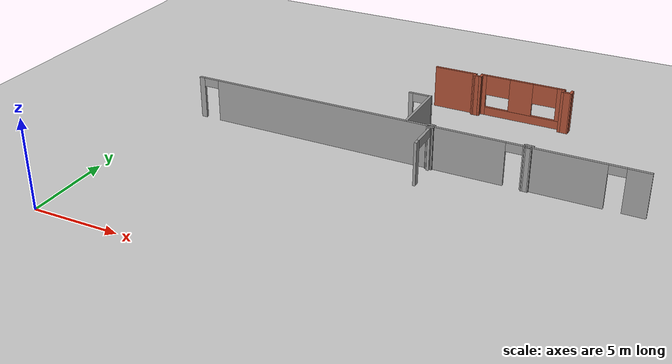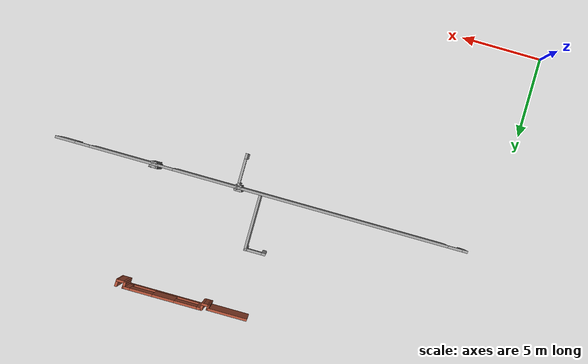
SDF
<sdf version="1.6">
 <world name="default">
  <model name="ground_plane">
   <static>1</static>
   <link name="link">
    <collision name="collision">
     <geometry><plane><normal>0 0 1</normal><size>100 100</size></plane></geometry>
     <surface><friction><ode><mu>100</mu><mu2>50</mu2></ode></friction></surface>
    </collision>
    <visual name="visual">
     <cast_shadows>0</cast_shadows>
     <geometry><plane><normal>0 0 1</normal><size>100 100</size></plane></geometry>
     <material>
      <script><uri>file://media/materials/scripts/gazebo.material</uri><name>Gazebo/Grey</name></script>
     </material>
    </visual>
   </link>
  </model>
  <model name="CVSSP">
   <pose>23.8714 24.094 0 0 -0 0</pose>
   <link name="Wall_517">
    <pose>-9.53376 -11.3942 0 0 -0 3.14159</pose>
    <visual name="Wall_517_Visual_0">
     <pose>-12.2631 0 1.25 0 -0 0</pose>
     <geometry><box><size>1.22376 0.15 2.5</size></box></geometry>
     <material>
      <script><uri>file://media/materials/scripts/gazebo.material</uri><name>Gazebo/Grey</name></script>
      <ambient>0.588235 0.588235 0.588235 1</ambient>
     </material>
    </visual>
    <collision name="Wall_517_Collision_0">
     <geometry><box><size>1.22376 0.15 2.5</size></box></geometry>
     <pose>-12.2631 0 1.25 0 -0 0</pose>
    </collision>
    <visual name="Wall_517_Visual_1">
     <pose>-8.60772 0 1.25 0 -0 0</pose>
     <geometry><box><size>4.28704 0.15 2.5</size></box></geometry>
     <material>
      <script><uri>file://media/materials/scripts/gazebo.material</uri><name>Gazebo/Grey</name></script>
      <ambient>0.588235 0.588235 0.588235 1</ambient>
     </material>
    </visual>
    <collision name="Wall_517_Collision_1">
     <geometry><box><size>4.28704 0.15 2.5</size></box></geometry>
     <pose>-8.60772 0 1.25 0 -0 0</pose>
    </collision>
    <visual name="Wall_517_Visual_2">
     <pose>3.03485 0 1.25 0 -0 0</pose>
     <geometry><box><size>17.1981 0.15 2.5</size></box></geometry>
     <material>
      <script><uri>file://media/materials/scripts/gazebo.material</uri><name>Gazebo/Grey</name></script>
      <ambient>0.588235 0.588235 0.588235 1</ambient>
     </material>
    </visual>
    <collision name="Wall_517_Collision_2">
     <geometry><box><size>17.1981 0.15 2.5</size></box></geometry>
     <pose>3.03485 0 1.25 0 -0 0</pose>
    </collision>
    <visual name="Wall_517_Visual_3">
     <pose>12.7044 0 1.25 0 -0 0</pose>
     <geometry><box><size>0.341103 0.15 2.5</size></box></geometry>
     <material>
      <script><uri>file://media/materials/scripts/gazebo.material</uri><name>Gazebo/Grey</name></script>
      <ambient>0.588235 0.588235 0.588235 1</ambient>
     </material>
    </visual>
    <collision name="Wall_517_Collision_3">
     <geometry><box><size>0.341103 0.15 2.5</size></box></geometry>
     <pose>12.7044 0 1.25 0 -0 0</pose>
    </collision>
    <visual name="Wall_517_Visual_4">
     <pose>-11.2012 0 2.25 0 -0 0</pose>
     <geometry><box><size>0.9 0.15 0.5</size></box></geometry>
     <material>
      <script><uri>file://media/materials/scripts/gazebo.material</uri><name>Gazebo/Grey</name></script>
      <ambient>0.588235 0.588235 0.588235 1</ambient>
     </material>
    </visual>
    <collision name="Wall_517_Collision_4">
     <geometry><box><size>0.9 0.15 0.5</size></box></geometry>
     <pose>-11.2012 0 2.25 0 -0 0</pose>
    </collision>
    <visual name="Wall_517_Visual_5">
     <pose>-6.0142 0 2.25 0 -0 0</pose>
     <geometry><box><size>0.9 0.15 0.5</size></box></geometry>
     <material>
      <script><uri>file://media/materials/scripts/gazebo.material</uri><name>Gazebo/Grey</name></script>
      <ambient>0.588235 0.588235 0.588235 1</ambient>
     </material>
    </visual>
    <collision name="Wall_517_Collision_5">
     <geometry><box><size>0.9 0.15 0.5</size></box></geometry>
     <pose>-6.0142 0 2.25 0 -0 0</pose>
    </collision>
    <visual name="Wall_517_Visual_6">
     <pose>12.0839 0 2.25 0 -0 0</pose>
     <geometry><box><size>0.9 0.15 0.5</size></box></geometry>
     <material>
      <script><uri>file://media/materials/scripts/gazebo.material</uri><name>Gazebo/Grey</name></script>
      <ambient>0.588235 0.588235 0.588235 1</ambient>
     </material>
    </visual>
    <collision name="Wall_517_Collision_6">
     <geometry><box><size>0.9 0.15 0.5</size></box></geometry>
     <pose>12.0839 0 2.25 0 -0 0</pose>
    </collision>
   </link>
   <link name="Wall_528">
    <pose>-10.0632 -7.95787 0 0 -0 0</pose>
    <visual name="Wall_528_Visual_0">
     <pose>-0.550159 0 1.25 0 -0 0</pose>
     <geometry><box><size>0.253402 0.15 2.5</size></box></geometry>
     <material>
      <script><uri>file://media/materials/scripts/gazebo.material</uri><name>Gazebo/Grey</name></script>
      <ambient>0.588235 0.588235 0.588235 1</ambient>
     </material>
    </visual>
    <collision name="Wall_528_Collision_0">
     <geometry><box><size>0.253402 0.15 2.5</size></box></geometry>
     <pose>-0.550159 0 1.25 0 -0 0</pose>
    </collision>
    <visual name="Wall_528_Visual_1">
     <pose>0.576701 0 1.25 0 -0 0</pose>
     <geometry><box><size>0.200318 0.15 2.5</size></box></geometry>
     <material>
      <script><uri>file://media/materials/scripts/gazebo.material</uri><name>Gazebo/Grey</name></script>
      <ambient>0.588235 0.588235 0.588235 1</ambient>
     </material>
    </visual>
    <collision name="Wall_528_Collision_1">
     <geometry><box><size>0.200318 0.15 2.5</size></box></geometry>
     <pose>0.576701 0 1.25 0 -0 0</pose>
    </collision>
    <visual name="Wall_528_Visual_2">
     <pose>0.026542 0 2.25 0 -0 0</pose>
     <geometry><box><size>0.9 0.15 0.5</size></box></geometry>
     <material>
      <script><uri>file://media/materials/scripts/gazebo.material</uri><name>Gazebo/Grey</name></script>
      <ambient>0.588235 0.588235 0.588235 1</ambient>
     </material>
    </visual>
    <collision name="Wall_528_Collision_2">
     <geometry><box><size>0.9 0.15 0.5</size></box></geometry>
     <pose>0.026542 0 2.25 0 -0 0</pose>
    </collision>
   </link>
   <link name="Wall_529">
    <collision name="Wall_529_Collision">
     <geometry><box><size>3.5 0.15 2.5</size></box></geometry>
     <pose>0 0 1.25 0 -0 0</pose>
    </collision>
    <visual name="Wall_529_Visual">
     <pose>0 0 1.25 0 -0 0</pose>
     <geometry><box><size>3.5 0.15 2.5</size></box></geometry>
     <material>
      <script><uri>file://media/materials/scripts/gazebo.material</uri><name>Gazebo/Grey</name></script>
      <ambient>0.588235 0.588235 0.588235 1</ambient>
     </material>
    </visual>
    <pose>-9.4614 -9.62137 0 0 0 -1.5708</pose>
   </link>
   <link name="Wall_537">
    <pose>-8.036 -12.4082 0 0 0 -1.5708</pose>
    <visual name="Wall_537_Visual_0">
     <pose>-0.92041 0 1.25 0 -0 0</pose>
     <geometry><box><size>0.409181 0.15 2.5</size></box></geometry>
     <material>
      <script><uri>file://media/materials/scripts/gazebo.material</uri><name>Gazebo/Grey</name></script>
      <ambient>1 1 1 1</ambient>
     </material>
    </visual>
    <collision name="Wall_537_Collision_0">
     <geometry><box><size>0.409181 0.15 2.5</size></box></geometry>
     <pose>-0.92041 0 1.25 0 -0 0</pose>
    </collision>
    <visual name="Wall_537_Visual_1">
     <pose>0.95091 0 1.25 0 -0 0</pose>
     <geometry><box><size>0.34818 0.15 2.5</size></box></geometry>
     <material>
      <script><uri>file://media/materials/scripts/gazebo.material</uri><name>Gazebo/Grey</name></script>
      <ambient>1 1 1 1</ambient>
     </material>
    </visual>
    <collision name="Wall_537_Collision_1">
     <geometry><box><size>0.34818 0.15 2.5</size></box></geometry>
     <pose>0.95091 0 1.25 0 -0 0</pose>
    </collision>
    <visual name="Wall_537_Visual_2">
     <pose>0.0305 0 2.25 0 -0 0</pose>
     <geometry><box><size>1.49264 0.15 0.5</size></box></geometry>
     <material>
      <script><uri>file://media/materials/scripts/gazebo.material</uri><name>Gazebo/Grey</name></script>
      <ambient>1 1 1 1</ambient>
     </material>
    </visual>
    <collision name="Wall_537_Collision_2">
     <geometry><box><size>1.49264 0.15 0.5</size></box></geometry>
     <pose>0.0305 0 2.25 0 -0 0</pose>
    </collision>
   </link>
   <link name="Wall_800">
    <collision name="Wall_800_Collision">
     <geometry><box><size>2.52089 0.15 2.5</size></box></geometry>
     <pose>0 0 1.25 0 -0 0</pose>
    </collision>
    <visual name="Wall_800_Visual">
     <pose>0 0 1.25 0 -0 0</pose>
     <geometry><box><size>2.52089 0.15 2.5</size></box></geometry>
     <material>
      <script><uri>file://media/materials/scripts/gazebo.material</uri><name>Gazebo/Bricks</name></script>
      <ambient>1 1 1 1</ambient>
     </material>
    </visual>
    <pose>-9.45754 -3.87382 0 0 -0 0</pose>
   </link>
   <link name="Wall_801">
    <collision name="Wall_801_Collision">
     <geometry><box><size>0.358175 0.15 2.5</size></box></geometry>
     <pose>0 0 1.25 0 -0 0</pose>
    </collision>
    <visual name="Wall_801_Visual">
     <pose>0 0 1.25 0 -0 0</pose>
     <geometry><box><size>0.358175 0.15 2.5</size></box></geometry>
     <material>
      <script><uri>file://media/materials/scripts/gazebo.material</uri><name>Gazebo/Bricks</name></script>
      <ambient>1 1 1 1</ambient>
     </material>
    </visual>
    <pose>-8.27788 -3.9779 0 0 0 -1.6263</pose>
   </link>
   <link name="Wall_802">
    <collision name="Wall_802_Collision">
     <geometry><box><size>0.531655 0.15 2.5</size></box></geometry>
     <pose>0 0 1.25 0 -0 0</pose>
    </collision>
    <visual name="Wall_802_Visual">
     <pose>0 0 1.25 0 -0 0</pose>
     <geometry><box><size>0.531655 0.15 2.5</size></box></geometry>
     <material>
      <script><uri>file://media/materials/scripts/gazebo.material</uri><name>Gazebo/Bricks</name></script>
      <ambient>1 1 1 1</ambient>
     </material>
    </visual>
    <pose>-8.09283 -4.08199 0 0 -0 0</pose>
   </link>
   <link name="Wall_803">
    <collision name="Wall_803_Collision">
     <geometry><box><size>0.465304 0.15 2.5</size></box></geometry>
     <pose>0 0 1.25 0 -0 0</pose>
    </collision>
    <visual name="Wall_803_Visual">
     <pose>0 0 1.25 0 -0 0</pose>
     <geometry><box><size>0.465304 0.15 2.5</size></box></geometry>
     <material>
      <script><uri>file://media/materials/scripts/gazebo.material</uri><name>Gazebo/Bricks</name></script>
      <ambient>1 1 1 1</ambient>
     </material>
    </visual>
    <pose>-7.90201 -3.92434 0 0 -0 1.5708</pose>
   </link>
   <link name="Wall_805">
    <pose>-5.46544 -3.76669 0 0 -0 0</pose>
    <visual name="Wall_805_Visual_0">
     <pose>-2.31801 0 1.25 0 -0 0</pose>
     <geometry><box><size>0.363982 0.15 2.5</size></box></geometry>
     <material>
      <script><uri>file://media/materials/scripts/gazebo.material</uri><name>Gazebo/Bricks</name></script>
      <ambient>1 1 1 1</ambient>
     </material>
    </visual>
    <collision name="Wall_805_Collision_0">
     <geometry><box><size>0.363982 0.15 2.5</size></box></geometry>
     <pose>-2.31801 0 1.25 0 -0 0</pose>
    </collision>
    <visual name="Wall_805_Visual_1">
     <pose>0.181991 0 0.25 0 -0 0</pose>
     <geometry><box><size>4.63602 0.15 0.5</size></box></geometry>
     <material>
      <script><uri>file://media/materials/scripts/gazebo.material</uri><name>Gazebo/Bricks</name></script>
      <ambient>1 1 1 1</ambient>
     </material>
    </visual>
    <collision name="Wall_805_Collision_1">
     <geometry><box><size>4.63602 0.15 0.5</size></box></geometry>
     <pose>0.181991 0 0.25 0 -0 0</pose>
    </collision>
    <visual name="Wall_805_Visual_2">
     <pose>-0.045965 0 1.5 0 -0 0</pose>
     <geometry><box><size>1.36592 0.15 2</size></box></geometry>
     <material>
      <script><uri>file://media/materials/scripts/gazebo.material</uri><name>Gazebo/Bricks</name></script>
      <ambient>1 1 1 1</ambient>
     </material>
    </visual>
    <collision name="Wall_805_Collision_2">
     <geometry><box><size>1.36592 0.15 2</size></box></geometry>
     <pose>-0.045965 0 1.5 0 -0 0</pose>
    </collision>
    <visual name="Wall_805_Visual_3">
     <pose>2.26822 0 1.5 0 -0 0</pose>
     <geometry><box><size>0.463553 0.15 2</size></box></geometry>
     <material>
      <script><uri>file://media/materials/scripts/gazebo.material</uri><name>Gazebo/Bricks</name></script>
      <ambient>1 1 1 1</ambient>
     </material>
    </visual>
    <collision name="Wall_805_Collision_3">
     <geometry><box><size>0.463553 0.15 2</size></box></geometry>
     <pose>2.26822 0 1.5 0 -0 0</pose>
    </collision>
    <visual name="Wall_805_Visual_4">
     <pose>-1.43247 0 1.9 0 -0 0</pose>
     <geometry><box><size>1.40709 0.15 1.2</size></box></geometry>
     <material>
      <script><uri>file://media/materials/scripts/gazebo.material</uri><name>Gazebo/Bricks</name></script>
      <ambient>1 1 1 1</ambient>
     </material>
    </visual>
    <collision name="Wall_805_Collision_4">
     <geometry><box><size>1.40709 0.15 1.2</size></box></geometry>
     <pose>-1.43247 0 1.9 0 -0 0</pose>
    </collision>
    <visual name="Wall_805_Visual_5">
     <pose>1.33672 0 1.9 0 -0 0</pose>
     <geometry><box><size>1.39945 0.15 1.2</size></box></geometry>
     <material>
      <script><uri>file://media/materials/scripts/gazebo.material</uri><name>Gazebo/Bricks</name></script>
      <ambient>1 1 1 1</ambient>
     </material>
    </visual>
    <collision name="Wall_805_Collision_5">
     <geometry><box><size>1.39945 0.15 1.2</size></box></geometry>
     <pose>1.33672 0 1.9 0 -0 0</pose>
    </collision>
   </link>
   <link name="Wall_806">
    <collision name="Wall_806_Collision">
     <geometry><box><size>0.465304 0.15 2.5</size></box></geometry>
     <pose>0 0 1.25 0 -0 0</pose>
    </collision>
    <visual name="Wall_806_Visual">
     <pose>0 0 1.25 0 -0 0</pose>
     <geometry><box><size>0.465304 0.15 2.5</size></box></geometry>
     <material>
      <script><uri>file://media/materials/scripts/gazebo.material</uri><name>Gazebo/Bricks</name></script>
      <ambient>1 1 1 1</ambient>
     </material>
    </visual>
    <pose>-3.05201 -3.92434 0 0 0 -1.5708</pose>
   </link>
   <link name="Wall_807">
    <collision name="Wall_807_Collision">
     <geometry><box><size>0.60862 0.15 2.5</size></box></geometry>
     <pose>0 0 1.25 0 -0 0</pose>
    </collision>
    <visual name="Wall_807_Visual">
     <pose>0 0 1.25 0 -0 0</pose>
     <geometry><box><size>0.60862 0.15 2.5</size></box></geometry>
     <material>
      <script><uri>file://media/materials/scripts/gazebo.material</uri><name>Gazebo/Bricks</name></script>
      <ambient>1 1 1 1</ambient>
     </material>
    </visual>
    <pose>-2.82277 -4.08199 0 0 -0 0</pose>
   </link>
   <link name="Wall_808">
    <collision name="Wall_808_Collision">
     <geometry><box><size>0.453959 0.15 2.5</size></box></geometry>
     <pose>0 0 1.25 0 -0 0</pose>
    </collision>
    <visual name="Wall_808_Visual">
     <pose>0 0 1.25 0 -0 0</pose>
     <geometry><box><size>0.453959 0.15 2.5</size></box></geometry>
     <material>
      <script><uri>file://media/materials/scripts/gazebo.material</uri><name>Gazebo/Bricks</name></script>
      <ambient>1 1 1 1</ambient>
     </material>
    </visual>
    <pose>-2.58775 -3.93012 0 0 -0 1.53274</pose>
   </link>
   <link name="Wall_844">
    <collision name="Wall_844_Collision">
     <geometry><box><size>0.487216 0.15 2.5</size></box></geometry>
     <pose>0 0 1.25 0 -0 0</pose>
    </collision>
    <visual name="Wall_844_Visual">
     <pose>0 0 1.25 0 -0 0</pose>
     <geometry><box><size>0.487216 0.15 2.5</size></box></geometry>
     <material>
      <script><uri>file://media/materials/scripts/gazebo.material</uri><name>Gazebo/Grey</name></script>
      <ambient>1 1 1 1</ambient>
     </material>
    </visual>
    <pose>-8.08094 -11.2624 0 0 -0 0</pose>
   </link>
   <link name="Wall_845">
    <collision name="Wall_845_Collision">
     <geometry><box><size>0.383617 0.15 2.5</size></box></geometry>
     <pose>0 0 1.25 0 -0 0</pose>
    </collision>
    <visual name="Wall_845_Visual">
     <pose>0 0 1.25 0 -0 0</pose>
     <geometry><box><size>0.383617 0.15 2.5</size></box></geometry>
     <material>
      <script><uri>file://media/materials/scripts/gazebo.material</uri><name>Gazebo/Grey</name></script>
      <ambient>1 1 1 1</ambient>
     </material>
    </visual>
    <pose>-7.91666 -11.3791 0 0 0 -1.60782</pose>
   </link>
   <link name="Wall_846">
    <collision name="Wall_846_Collision">
     <geometry><box><size>0.409541 0.15 2.5</size></box></geometry>
     <pose>0 0 1.25 0 -0 0</pose>
    </collision>
    <visual name="Wall_846_Visual">
     <pose>0 0 1.25 0 -0 0</pose>
     <geometry><box><size>0.409541 0.15 2.5</size></box></geometry>
     <material>
      <script><uri>file://media/materials/scripts/gazebo.material</uri><name>Gazebo/Grey</name></script>
      <ambient>1 1 1 1</ambient>
     </material>
    </visual>
    <pose>-8.05068 -11.4958 0 0 -0 3.14159</pose>
   </link>
   <link name="Wall_847">
    <collision name="Wall_847_Collision">
     <geometry><box><size>0.393489 0.15 2.5</size></box></geometry>
     <pose>0 0 1.25 0 -0 0</pose>
    </collision>
    <visual name="Wall_847_Visual">
     <pose>0 0 1.25 0 -0 0</pose>
     <geometry><box><size>0.393489 0.15 2.5</size></box></geometry>
     <material>
      <script><uri>file://media/materials/scripts/gazebo.material</uri><name>Gazebo/Grey</name></script>
      <ambient>1 1 1 1</ambient>
     </material>
    </visual>
    <pose>-8.21497 -11.3791 0 0 -0 1.85885</pose>
   </link>
   <link name="Wall_849">
    <collision name="Wall_849_Collision">
     <geometry><box><size>0.513155 0.15 2.5</size></box></geometry>
     <pose>0 0 1.25 0 -0 0</pose>
    </collision>
    <visual name="Wall_849_Visual">
     <pose>0 0 1.25 0 -0 0</pose>
     <geometry><box><size>0.513155 0.15 2.5</size></box></geometry>
     <material>
      <script><uri>file://media/materials/scripts/gazebo.material</uri><name>Gazebo/Grey</name></script>
      <ambient>1 1 1 1</ambient>
     </material>
    </visual>
    <pose>-2.80222 -11.2451 0 0 -0 0</pose>
   </link>
   <link name="Wall_850">
    <collision name="Wall_850_Collision">
     <geometry><box><size>0.394561 0.15 2.5</size></box></geometry>
     <pose>0 0 1.25 0 -0 0</pose>
    </collision>
    <visual name="Wall_850_Visual">
     <pose>0 0 1.25 0 -0 0</pose>
     <geometry><box><size>0.394561 0.15 2.5</size></box></geometry>
     <material>
      <script><uri>file://media/materials/scripts/gazebo.material</uri><name>Gazebo/Grey</name></script>
      <ambient>1 1 1 1</ambient>
     </material>
    </visual>
    <pose>-2.63794 -11.3661 0 0 0 -1.71269</pose>
   </link>
   <link name="Wall_851">
    <collision name="Wall_851_Collision">
     <geometry><box><size>0.400899 0.15 2.5</size></box></geometry>
     <pose>0 0 1.25 0 -0 0</pose>
    </collision>
    <visual name="Wall_851_Visual">
     <pose>0 0 1.25 0 -0 0</pose>
     <geometry><box><size>0.400899 0.15 2.5</size></box></geometry>
     <material>
      <script><uri>file://media/materials/scripts/gazebo.material</uri><name>Gazebo/Grey</name></script>
      <ambient>1 1 1 1</ambient>
     </material>
    </visual>
    <pose>-2.78061 -11.4915 0 0 0 -3.10712</pose>
   </link>
   <link name="Wall_852">
    <collision name="Wall_852_Collision">
     <geometry><box><size>0.412548 0.15 2.5</size></box></geometry>
     <pose>0 0 1.25 0 -0 0</pose>
    </collision>
    <visual name="Wall_852_Visual">
     <pose>0 0 1.25 0 -0 0</pose>
     <geometry><box><size>0.412548 0.15 2.5</size></box></geometry>
     <material>
      <script><uri>file://media/materials/scripts/gazebo.material</uri><name>Gazebo/Grey</name></script>
      <ambient>1 1 1 1</ambient>
     </material>
    </visual>
    <pose>-2.94489 -11.3705 0 0 -0 1.87172</pose>
   </link>
   <static>1</static>
  </model>
 </world>
</sdf>
